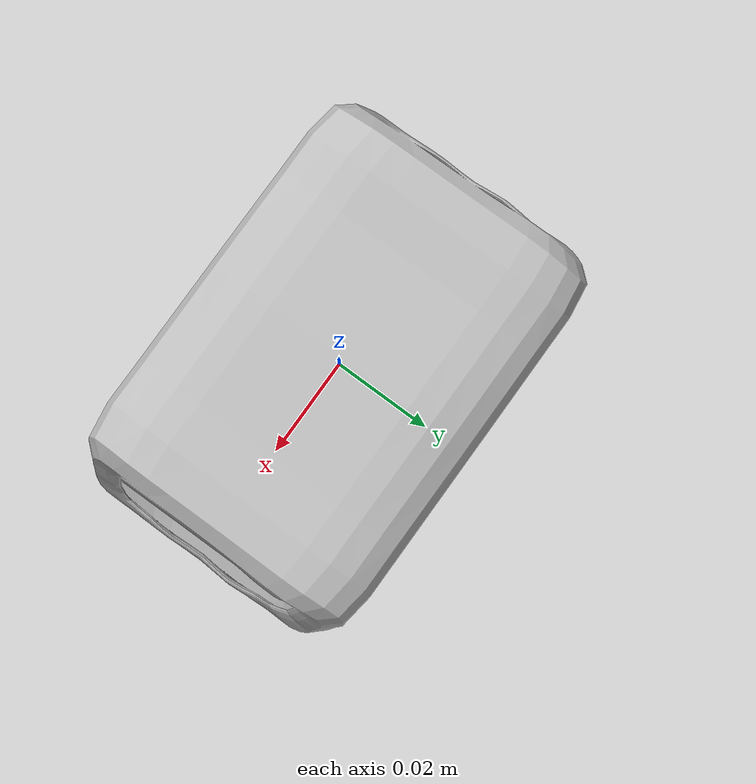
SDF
<?xml version="1.0"?>
<sdf version="1.5">
  <model name="lipo_battery">
    <static>false</static>

    <pose>0 0 0 0 0 0</pose>

    <link name="link">
      <pose>0 0 0 0 0 0</pose>

      <visual name="visual">
        <geometry>
          <mesh>
            <uri>model://lipo_battery/meshes/Untitled.dae</uri>
            <scale>1.0 1.0 1.0</scale>
          </mesh>
        </geometry>
      </visual>

      <collision name="collision">
        <geometry>
          <mesh>
            <uri>model://lipo_battery/meshes/Untitled.dae</uri>
            <scale>1.0 1.0 1.0</scale>
          </mesh>
        </geometry>
      </collision>

      <inertial>
        <mass>0.01</mass>
        <inertia>
          <ixx>0.000010052921019801413</ixx>
          <iyy>0.000002573134734131675</iyy>
          <izz>0.00001141102502635234</izz>
        </inertia>
      </inertial>
    </link>
  </model>
</sdf>
